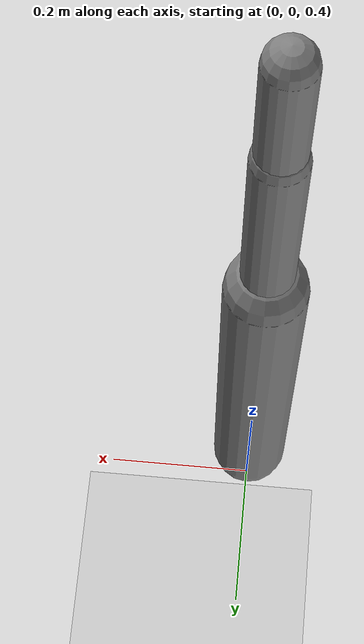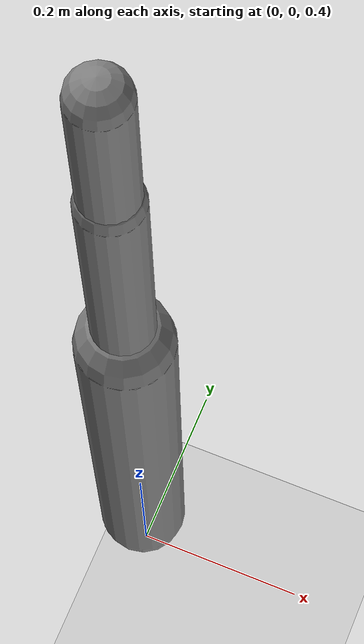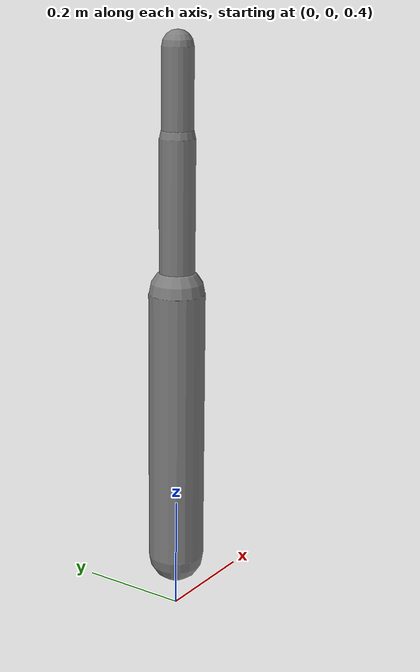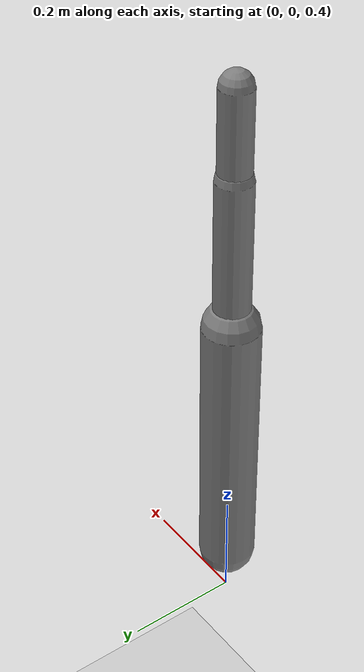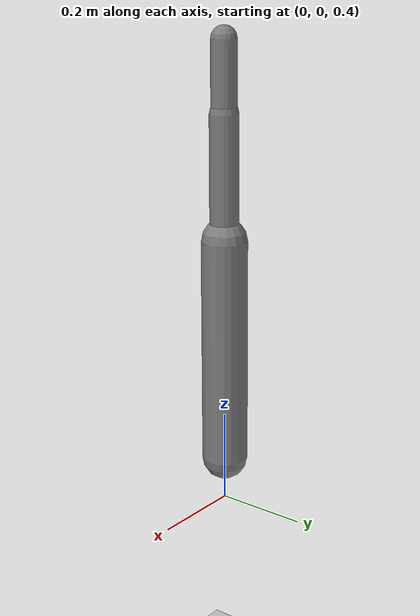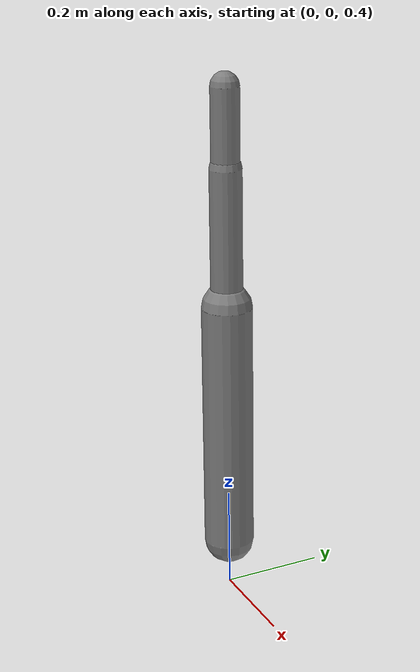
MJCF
<?xml version='1.0' encoding='UTF-8'?>
<mujoco model="RobotModel">
  <option gravity="0 0 -9.81" timestep="0.002" solver="CG" iterations="500" integrator="Euler"/>
  <worldbody>
    <geom name="Floor" type="plane" size="10 10 0.1" pos="0 0 0" rgba="0.8 0.8 0.8 1"/>
    <body name="Limb0" pos="0 0 0.5">
      <geom type="capsule" fromto="0 0 0 0 0 0.5" size="0.05" density="1000" contype="0" conaffinity="0"/>
      <body name="Limb0_a6d1d501" pos="0 0 0.5">
        <geom type="capsule" fromto="0 0 0 0 0 0.27196425299744503" size="0.03153166400230665" density="800" contype="0" conaffinity="0"/>
        <body name="Limb1_a6d1d501" pos="0 0 0.27196425299744503">
          <geom type="capsule" fromto="0 0 0 0 0 0.15348607884286655" size="0.02793643015357993" density="800" contype="0" conaffinity="0"/>
          <joint name="Joint_Limb0_a6d1d501_Limb1_a6d1d501_0" type="hinge" axis="0 1 0" range="-60 60"/>
        </body>
        <joint name="Joint_Limb0_Limb0_a6d1d501_0" type="hinge" axis="1 0 0" range="-60 60"/>
      </body>
      <body name="Limb2_a6d1d501" pos="0 0 0.5">
        <geom type="capsule" fromto="0 0 0 0 0 0.12650817390182192" size="0.02293036546743195" density="800" contype="0" conaffinity="0"/>
        <body name="Limb3_a6d1d501" pos="0 0 0.12650817390182192">
          <geom type="capsule" fromto="0 0 0 0 0 0.2925591525392806" size="0.015160984992924403" density="800" contype="0" conaffinity="0"/>
          <joint name="Joint_Limb2_a6d1d501_Limb3_a6d1d501_0" type="hinge" axis="1 0 0" range="-60 60"/>
        </body>
        <joint name="Joint_Limb0_Limb2_a6d1d501_0" type="hinge" axis="1 0 0" range="-60 60"/>
      </body>
    </body>
  </worldbody>
  <actuator>
    <position name="position_Actuator_Joint_Limb0_Limb0_a6d1d501_0" joint="Joint_Limb0_Limb0_a6d1d501_0" gear="1.0"/>
    <position name="position_Actuator_Joint_Limb0_a6d1d501_Limb1_a6d1d501_0" joint="Joint_Limb0_a6d1d501_Limb1_a6d1d501_0" gear="1.0"/>
    <position name="position_Actuator_Joint_Limb0_Limb2_a6d1d501_0" joint="Joint_Limb0_Limb2_a6d1d501_0" gear="1.0"/>
    <position name="position_Actuator_Joint_Limb2_a6d1d501_Limb3_a6d1d501_0" joint="Joint_Limb2_a6d1d501_Limb3_a6d1d501_0" gear="1.0"/>
  </actuator>
</mujoco>
